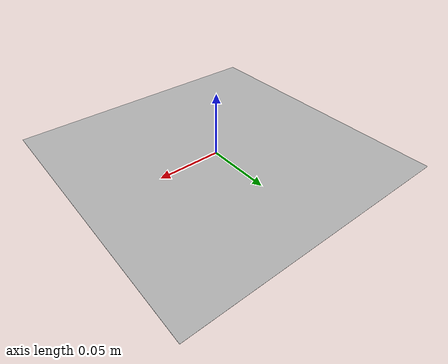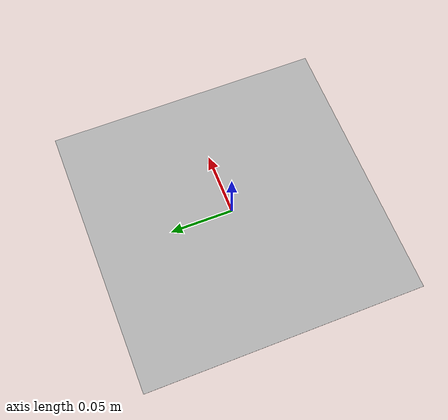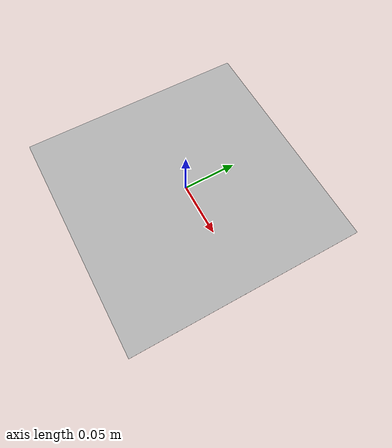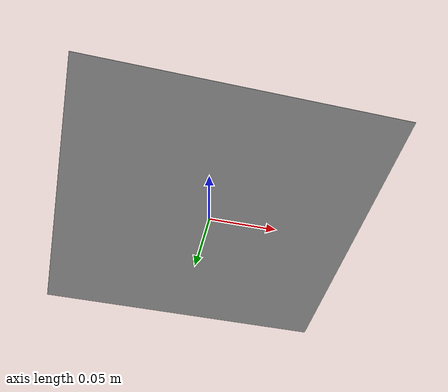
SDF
<?xml version="1.0"?>
<sdf version="1.4">
<model name="image_trailer_dock">
  <static>true</static>
    <link name="link">
      <visual name="visual">
        <cast_shadows>false</cast_shadows>
        <geometry>
          <plane>
            <normal>0 0 1</normal>
            <size>0.22 0.22</size>
          </plane>
        </geometry>
        <material>
          <script>
            <uri>model://image_trailer_dock/materials/scripts</uri>
            <uri>model://image_trailer_dock/materials/textures</uri>
            <name>ImageTrailerDock/Image</name>
          </script>
        </material>
      </visual>
    </link>
  </model>
</sdf>
